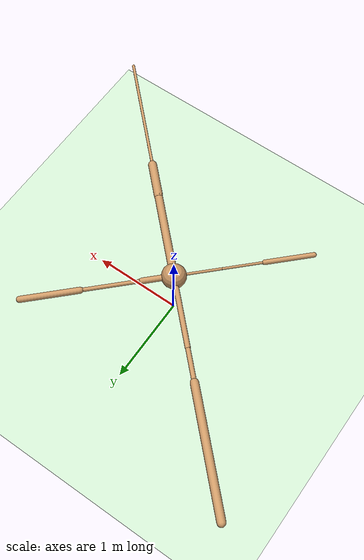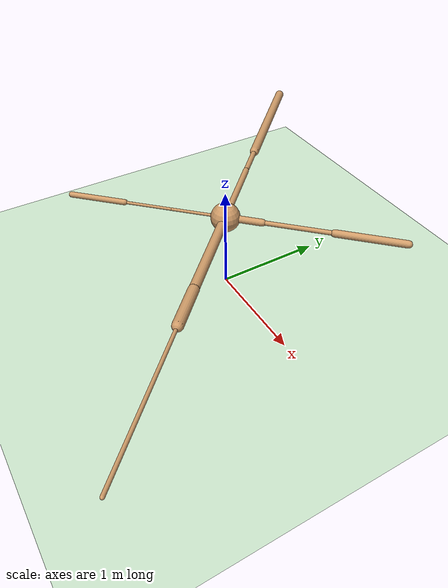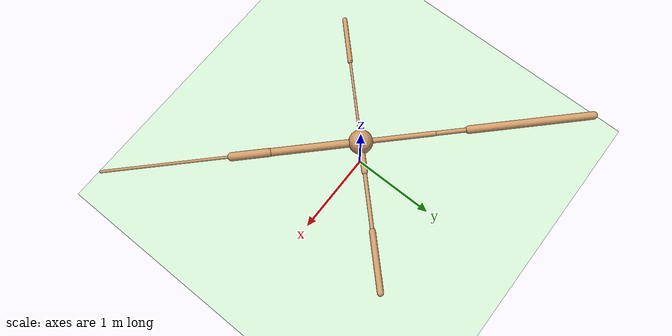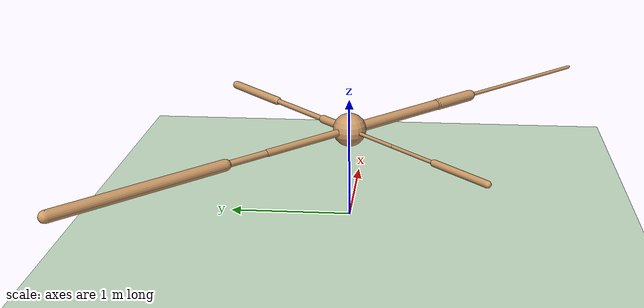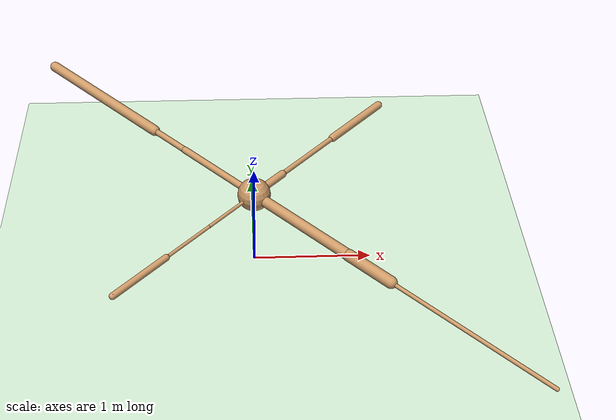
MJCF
<mujoco model="ant">
  <compiler angle="degree" coordinate="local" inertiafromgeom="true" />
  <option integrator="RK4" timestep="0.01" />
  <custom>
    <numeric data="0.0 0.0 0.55 1.0 0.0 0.0 0.0 0.0 1.0 0.0 -1.0 0.0 -1.0 0.0 1.0" name="init_qpos" />
  </custom>
  <default>
    <joint armature="1" damping="1" limited="true" />
    <geom conaffinity="0" condim="3" density="5.0" friction="1 0.5 0.5" margin="0.01" rgba="0.8 0.6 0.4 1" />
  </default>
  <asset>
    <texture builtin="gradient" height="100" rgb1="1 1 1" rgb2="0 0 0" type="skybox" width="100" />
    <texture builtin="flat" height="1278" mark="cross" markrgb="1 1 1" name="texgeom" random="0.01" rgb1="0.8 0.6 0.4" rgb2="0.8 0.6 0.4" type="cube" width="127" />
    <texture builtin="checker" height="100" name="texplane" rgb1="0 0 0" rgb2="0.8 0.8 0.8" type="2d" width="100" />
    <material name="MatPlane" reflectance="0.5" shininess="1" specular="1" texrepeat="60 60" texture="texplane" />
    <material name="geom" texture="texgeom" texuniform="true" />
  </asset>
  <worldbody>
    <light cutoff="100" diffuse="1 1 1" dir="-0 0 -1.3" directional="true" exponent="1" pos="0 0 1.3" specular=".1 .1 .1" />
    <geom conaffinity="1" condim="3" material="MatPlane" name="floor" pos="0 0 0" rgba="0.8 0.9 0.8 1" size="40 40 40" type="plane" />
    <body name="torso" pos="0 0 0.75">
      <camera name="track" mode="trackcom" pos="0 -11 5" xyaxes="1 0 0 0 0.5 1" />
      <geom name="torso_geom" pos="0 0 0" size="0.13624542951583862" type="sphere" />
      <joint armature="0" damping="0" limited="false" margin="0.01" name="root" pos="0 0 0" type="free" />
      <body name="front_left_leg" pos="0 0 0">
        <geom fromto="0 0 0 0.24119305610656738 0.24119305610656738 0" name="aux_1_geom" size="0.03316045552492142" type="capsule" />
        <body name="aux_1" pos="0.24119305610656738 0.24119305610656738 0">
          <joint axis="0 0 1" name="hip_1" pos="0.0 0.0 0.0" range="-30 30" type="hinge" />
          <geom fromto="0 0 0 0.45712971687316895 0.45712971687316895 0" name="left_leg_geom" size="0.021840069442987442" type="capsule" />
          <body name="left_leg_geom_aux" pos="0.45712971687316895 0.45712971687316895 0">
            <joint axis="-1 1 0" name="ankle_1" pos="0.0 0.0 0.0" range="30 70" type="hinge" />
            <geom fromto="0 0 0 0.4477100968360901 0.4477100968360901 0" name="left_ankle_geom" size="0.03492087870836258" type="capsule" />
          </body>
        </body>
      </body>
      <body name="front_right_leg" pos="0 0 0">
        <geom fromto="0 0 0 -0.5766462087631226 0.5766462087631226 0" name="aux_2_geom" size="0.029283054172992706" type="capsule" />
        <body name="aux_2" pos="-0.5766462087631226 0.5766462087631226 0">
          <joint axis="0 0 1" name="hip_2" pos="0.0 0.0 0.0" range="-30 30" type="hinge" />
          <geom fromto="0 0 0 -0.27099189162254333 0.27099189162254333 0" name="right_leg_geom" size="0.026006069034337997" type="capsule" />
          <body name="right_leg_geom_aux" pos="-0.27099189162254333 0.27099189162254333 0">
            <joint axis="1 1 0" name="ankle_2" pos="0.0 0.0 0.0" range="-70 -30" type="hinge" />
            <geom fromto="0 0 0 -0.984929084777832 0.984929084777832 0" name="right_ankle_geom" size="0.045670218765735626" type="capsule" />
          </body>
        </body>
      </body>
      <body name="back_leg" pos="0 0 0">
        <geom fromto="0 0 0 -0.3615228831768036 -0.3615228831768036 0" name="aux_3_geom" size="0.014036538079380989" type="capsule" />
        <body name="aux_3" pos="-0.3615228831768036 -0.3615228831768036 0">
          <joint axis="0 0 1" name="hip_3" pos="0.0 0.0 0.0" range="-30 30" type="hinge" />
          <geom fromto="0 0 0 -0.3251548111438751 -0.3251548111438751 0" name="back_leg_geom" size="0.013727355748414993" type="capsule" />
          <body name="back_leg_geom_aux" pos="-0.3251548111438751 -0.3251548111438751 0">
            <joint axis="-1 1 0" name="ankle_3" pos="0.0 0.0 0.0" range="-70 -30" type="hinge" />
            <geom fromto="0 0 0 -0.3773115277290344 -0.3773115277290344 0" name="third_ankle_geom" size="0.027259020134806633" type="capsule" />
          </body>
        </body>
      </body>
      <body name="right_back_leg" pos="0 0 0">
        <geom fromto="0 0 0 0.7047420144081116 -0.7047420144081116 0" name="aux_4_geom" size="0.04452614486217499" type="capsule" />
        <body name="aux_4" pos="0.7047420144081116 -0.7047420144081116 0">
          <joint axis="0 0 1" name="hip_4" pos="0.0 0.0 0.0" range="-30 30" type="hinge" />
          <geom fromto="0 0 0 0.2876265048980713 -0.2876265048980713 0" name="rightback_leg_geom" size="0.04818598926067352" type="capsule" />
          <body name="rightback_leg_geom_aux" pos="0.2876265048980713 -0.2876265048980713 0">
            <joint axis="1 1 0" name="ankle_4" pos="0.0 0.0 0.0" range="30 70" type="hinge" />
            <geom fromto="0 0 0 0.9943166971206665 -0.9943166971206665 0" name="fourth_ankle_geom" size="0.015686016529798508" type="capsule" />
          </body>
        </body>
      </body>
    </body>
  </worldbody>
  <actuator>
    <motor ctrllimited="true" ctrlrange="-1.0 1.0" joint="hip_4" gear="150" />
    <motor ctrllimited="true" ctrlrange="-1.0 1.0" joint="ankle_4" gear="150" />
    <motor ctrllimited="true" ctrlrange="-1.0 1.0" joint="hip_1" gear="150" />
    <motor ctrllimited="true" ctrlrange="-1.0 1.0" joint="ankle_1" gear="150" />
    <motor ctrllimited="true" ctrlrange="-1.0 1.0" joint="hip_2" gear="150" />
    <motor ctrllimited="true" ctrlrange="-1.0 1.0" joint="ankle_2" gear="150" />
    <motor ctrllimited="true" ctrlrange="-1.0 1.0" joint="hip_3" gear="150" />
    <motor ctrllimited="true" ctrlrange="-1.0 1.0" joint="ankle_3" gear="150" />
  </actuator>
</mujoco>
